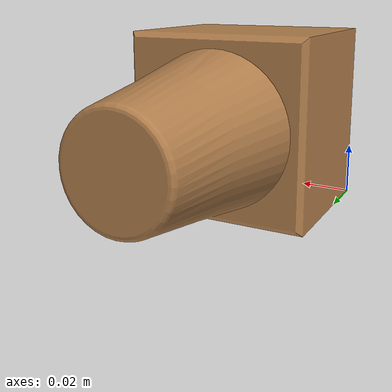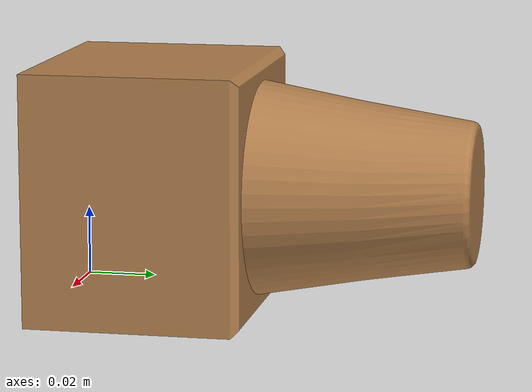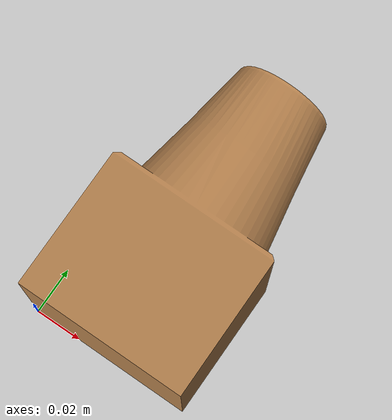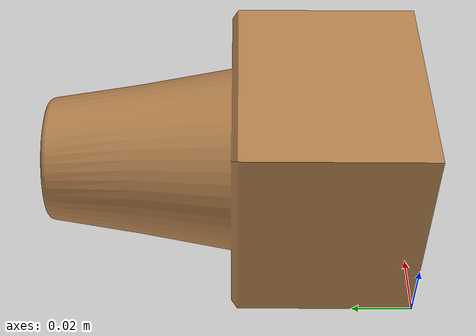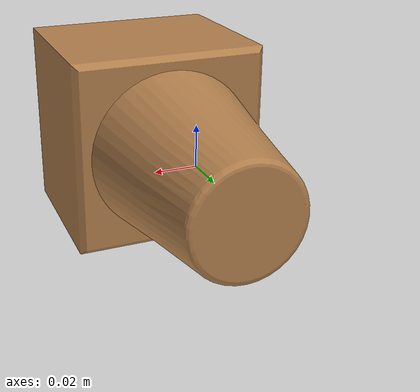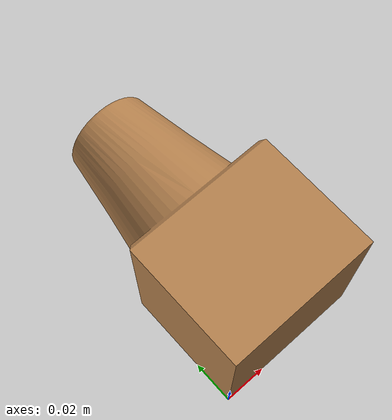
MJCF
<mujoco model="peg">
  <asset>
    <mesh file="meshes/yuanzhu.STL" name="yuanzhu_mesh"  scale="0.002 0.002 0.002" />
    <texture file="../textures/red-wood.png" name="red-wood" />
    <material name="bmetal"  reflectance="1.0" shininess="1.0" specular="1.0" texrepeat="1 1" texture="red-wood" texuniform="true"/>

  </asset>
  <worldbody>
    <body>
      <body name="object">

        <geom pos="0 0 0" mesh="yuanzhu_mesh" type="mesh" solimp="0.998 0.998 0.001" solref="0.02 1" density="100" friction="0.95 0.3 0.1" material="bmetal" group="0" condim="4"/>
      </body>
      <site rgba="0 0 0 0" size="0.005" pos="0 0 -0.082" name="bottom_site"/>
      <site rgba="0 0 0 0" size="0.005" pos="0 0 0.075" name="top_site"/>
      <site rgba="0 0 0 0" size="0.005" pos="0.0254 0.0254 0" name="horizontal_radius_site"/>
    </body>
  </worldbody>
</mujoco>
